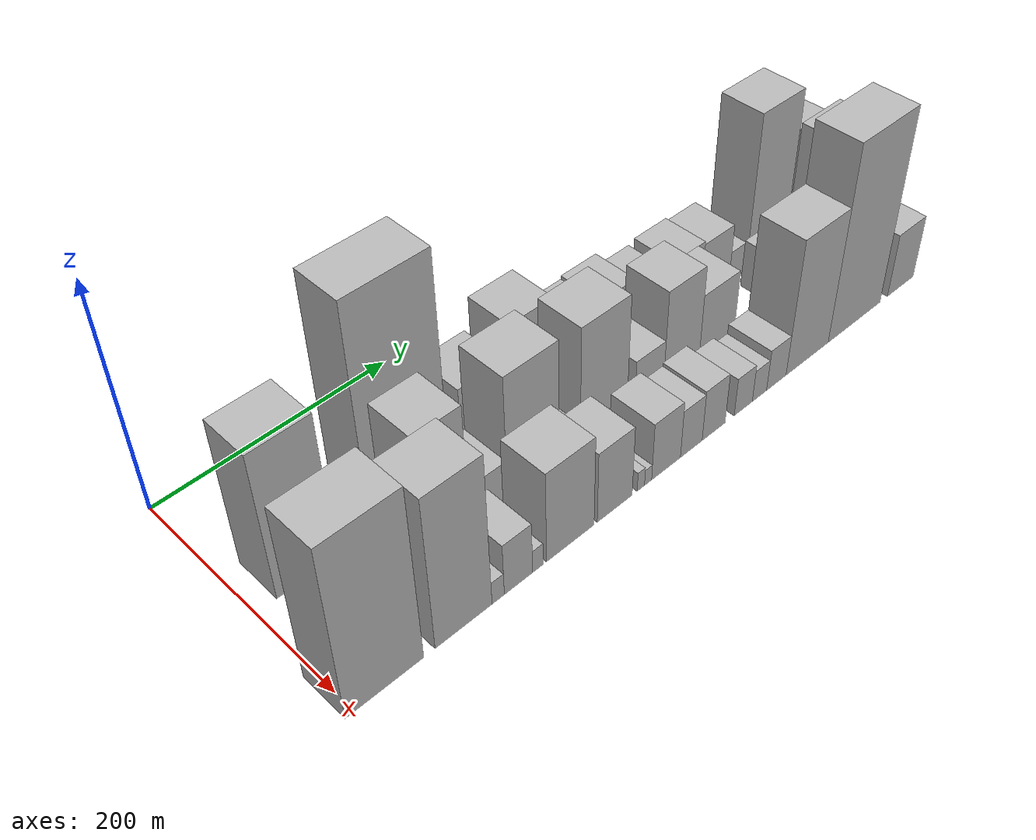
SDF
<sdf version="1.6">
 <world name="default">
  <model name="building_18">
   <static>1</static>
   <pose>100.0000 39.9462 0 0.000000 0.000000 0.000000</pose>
   <link name="link">
    <pose>0 0 66.00 0 0 0</pose>
    <collision name="collision"><geometry><box><size>40.0000 47.7976 132.0000</size></box></geometry></collision>
    <visual name="visual">
     <cast_shadows>0</cast_shadows>
     <geometry><box><size>40.0000 47.7976 132.0000</size></box></geometry>
     <material>
      <script>
       <uri>model://HANNAS_wall/materials/scripts</uri>
       <uri>model://HANNAS_wall/materials/textures</uri>
       <name>vrc/HANNAS_wall</name>
      </script>
     </material>
    </visual>
   </link>
  </model>
  <model name="building_19">
   <static>1</static>
   <pose>100.0000 73.2808 0 0.000000 0.000000 0.000000</pose>
   <link name="link">
    <pose>0 0 16.50 0 0 0</pose>
    <collision name="collision"><geometry><box><size>40.0000 18.8716 33.0000</size></box></geometry></collision>
    <visual name="visual">
     <cast_shadows>0</cast_shadows>
     <geometry><box><size>40.0000 18.8716 33.0000</size></box></geometry>
     <material>
      <script>
       <uri>model://HANNAS_wall/materials/scripts</uri>
       <uri>model://HANNAS_wall/materials/textures</uri>
       <name>vrc/HANNAS_wall</name>
      </script>
     </material>
    </visual>
   </link>
  </model>
  <model name="building_20">
   <static>1</static>
   <pose>100.0000 126.0601 0 0.000000 0.000000 0.000000</pose>
   <link name="link">
    <pose>0 0 100.50 0 0 0</pose>
    <collision name="collision"><geometry><box><size>40.0000 68.6869 201.0000</size></box></geometry></collision>
    <visual name="visual">
     <cast_shadows>0</cast_shadows>
     <geometry><box><size>40.0000 68.6869 201.0000</size></box></geometry>
     <material>
      <script>
       <uri>model://HANNAS_wall/materials/scripts</uri>
       <uri>model://HANNAS_wall/materials/textures</uri>
       <name>vrc/HANNAS_wall</name>
      </script>
     </material>
    </visual>
   </link>
  </model>
  <model name="building_21">
   <static>1</static>
   <pose>100.0000 166.3277 0 0.000000 0.000000 0.000000</pose>
   <link name="link">
    <pose>0 0 12.00 0 0 0</pose>
    <collision name="collision"><geometry><box><size>40.0000 11.8484 24.0000</size></box></geometry></collision>
    <visual name="visual">
     <cast_shadows>0</cast_shadows>
     <geometry><box><size>40.0000 11.8484 24.0000</size></box></geometry>
     <material>
      <script>
       <uri>model://HANNAS_wall/materials/scripts</uri>
       <uri>model://HANNAS_wall/materials/textures</uri>
       <name>vrc/HANNAS_wall</name>
      </script>
     </material>
    </visual>
   </link>
  </model>
  <model name="building_22">
   <static>1</static>
   <pose>100.0000 192.9330 0 0.000000 0.000000 0.000000</pose>
   <link name="link">
    <pose>0 0 37.50 0 0 0</pose>
    <collision name="collision"><geometry><box><size>40.0000 41.3621 75.0000</size></box></geometry></collision>
    <visual name="visual">
     <cast_shadows>0</cast_shadows>
     <geometry><box><size>40.0000 41.3621 75.0000</size></box></geometry>
     <material>
      <script>
       <uri>model://HANNAS_wall/materials/scripts</uri>
       <uri>model://HANNAS_wall/materials/textures</uri>
       <name>vrc/HANNAS_wall</name>
      </script>
     </material>
    </visual>
   </link>
  </model>
  <model name="building_23">
   <static>1</static>
   <pose>100.0000 238.8973 0 0.000000 0.000000 0.000000</pose>
   <link name="link">
    <pose>0 0 51.00 0 0 0</pose>
    <collision name="collision"><geometry><box><size>40.0000 40.5665 102.0000</size></box></geometry></collision>
    <visual name="visual">
     <cast_shadows>0</cast_shadows>
     <geometry><box><size>40.0000 40.5665 102.0000</size></box></geometry>
     <material>
      <script>
       <uri>model://HANNAS_wall/materials/scripts</uri>
       <uri>model://HANNAS_wall/materials/textures</uri>
       <name>vrc/HANNAS_wall</name>
      </script>
     </material>
    </visual>
   </link>
  </model>
  <model name="building_24">
   <static>1</static>
   <pose>100.0000 286.8793 0 0.000000 0.000000 0.000000</pose>
   <link name="link">
    <pose>0 0 33.00 0 0 0</pose>
    <collision name="collision"><geometry><box><size>40.0000 37.3974 66.0000</size></box></geometry></collision>
    <visual name="visual">
     <cast_shadows>0</cast_shadows>
     <geometry><box><size>40.0000 37.3974 66.0000</size></box></geometry>
     <material>
      <script>
       <uri>model://HANNAS_wall/materials/scripts</uri>
       <uri>model://HANNAS_wall/materials/textures</uri>
       <name>vrc/HANNAS_wall</name>
      </script>
     </material>
    </visual>
   </link>
  </model>
  <model name="building_25">
   <static>1</static>
   <pose>100.0000 323.3597 0 0.000000 0.000000 0.000000</pose>
   <link name="link">
    <pose>0 0 34.50 0 0 0</pose>
    <collision name="collision"><geometry><box><size>40.0000 35.5632 69.0000</size></box></geometry></collision>
    <visual name="visual">
     <cast_shadows>0</cast_shadows>
     <geometry><box><size>40.0000 35.5632 69.0000</size></box></geometry>
     <material>
      <script>
       <uri>model://HANNAS_wall/materials/scripts</uri>
       <uri>model://HANNAS_wall/materials/textures</uri>
       <name>vrc/HANNAS_wall</name>
      </script>
     </material>
    </visual>
   </link>
  </model>
  <model name="building_26">
   <static>1</static>
   <pose>100.0000 360.8102 0 0.000000 0.000000 0.000000</pose>
   <link name="link">
    <pose>0 0 28.50 0 0 0</pose>
    <collision name="collision"><geometry><box><size>40.0000 31.3379 57.0000</size></box></geometry></collision>
    <visual name="visual">
     <cast_shadows>0</cast_shadows>
     <geometry><box><size>40.0000 31.3379 57.0000</size></box></geometry>
     <material>
      <script>
       <uri>model://HANNAS_wall/materials/scripts</uri>
       <uri>model://HANNAS_wall/materials/textures</uri>
       <name>vrc/HANNAS_wall</name>
      </script>
     </material>
    </visual>
   </link>
  </model>
  <model name="building_27">
   <static>1</static>
   <pose>100.0000 400.1035 0 0.000000 0.000000 0.000000</pose>
   <link name="link">
    <pose>0 0 30.00 0 0 0</pose>
    <collision name="collision"><geometry><box><size>40.0000 35.2487 60.0000</size></box></geometry></collision>
    <visual name="visual">
     <cast_shadows>0</cast_shadows>
     <geometry><box><size>40.0000 35.2487 60.0000</size></box></geometry>
     <material>
      <script>
       <uri>model://HANNAS_wall/materials/scripts</uri>
       <uri>model://HANNAS_wall/materials/textures</uri>
       <name>vrc/HANNAS_wall</name>
      </script>
     </material>
    </visual>
   </link>
  </model>
  <model name="building_28">
   <static>1</static>
   <pose>100.0000 434.7161 0 0.000000 0.000000 0.000000</pose>
   <link name="link">
    <pose>0 0 28.50 0 0 0</pose>
    <collision name="collision"><geometry><box><size>40.0000 33.9765 57.0000</size></box></geometry></collision>
    <visual name="visual">
     <cast_shadows>0</cast_shadows>
     <geometry><box><size>40.0000 33.9765 57.0000</size></box></geometry>
     <material>
      <script>
       <uri>model://HANNAS_wall/materials/scripts</uri>
       <uri>model://HANNAS_wall/materials/textures</uri>
       <name>vrc/HANNAS_wall</name>
      </script>
     </material>
    </visual>
   </link>
  </model>
  <model name="building_29">
   <static>1</static>
   <pose>100.0000 460.5579 0 0.000000 0.000000 0.000000</pose>
   <link name="link">
    <pose>0 0 15.00 0 0 0</pose>
    <collision name="collision"><geometry><box><size>40.0000 17.7070 30.0000</size></box></geometry></collision>
    <visual name="visual">
     <cast_shadows>0</cast_shadows>
     <geometry><box><size>40.0000 17.7070 30.0000</size></box></geometry>
     <material>
      <script>
       <uri>model://HANNAS_wall/materials/scripts</uri>
       <uri>model://HANNAS_wall/materials/textures</uri>
       <name>vrc/HANNAS_wall</name>
      </script>
     </material>
    </visual>
   </link>
  </model>
  <model name="building_30">
   <static>1</static>
   <pose>100.0000 496.8309 0 0.000000 0.000000 0.000000</pose>
   <link name="link">
    <pose>0 0 73.50 0 0 0</pose>
    <collision name="collision"><geometry><box><size>40.0000 48.8391 147.0000</size></box></geometry></collision>
    <visual name="visual">
     <cast_shadows>0</cast_shadows>
     <geometry><box><size>40.0000 48.8391 147.0000</size></box></geometry>
     <material>
      <script>
       <uri>model://HANNAS_wall/materials/scripts</uri>
       <uri>model://HANNAS_wall/materials/textures</uri>
       <name>vrc/HANNAS_wall</name>
      </script>
     </material>
    </visual>
   </link>
  </model>
  <model name="building_31">
   <static>1</static>
   <pose>100.0000 542.0296 0 0.000000 0.000000 0.000000</pose>
   <link name="link">
    <pose>0 0 54.00 0 0 0</pose>
    <collision name="collision"><geometry><box><size>40.0000 35.5582 108.0000</size></box></geometry></collision>
    <visual name="visual">
     <cast_shadows>0</cast_shadows>
     <geometry><box><size>40.0000 35.5582 108.0000</size></box></geometry>
     <material>
      <script>
       <uri>model://HANNAS_wall/materials/scripts</uri>
       <uri>model://HANNAS_wall/materials/textures</uri>
       <name>vrc/HANNAS_wall</name>
      </script>
     </material>
    </visual>
   </link>
  </model>
  <model name="building_47">
   <static>1</static>
   <pose>149.0000 22.3086 0 0.000000 0.000000 0.000000</pose>
   <link name="link">
    <pose>0 0 12.00 0 0 0</pose>
    <collision name="collision"><geometry><box><size>40.0000 9.8661 24.0000</size></box></geometry></collision>
    <visual name="visual">
     <cast_shadows>0</cast_shadows>
     <geometry><box><size>40.0000 9.8661 24.0000</size></box></geometry>
     <material>
      <script>
       <uri>model://HANNAS_wall/materials/scripts</uri>
       <uri>model://HANNAS_wall/materials/textures</uri>
       <name>vrc/HANNAS_wall</name>
      </script>
     </material>
    </visual>
   </link>
  </model>
  <model name="building_48">
   <static>1</static>
   <pose>149.0000 48.2314 0 0.000000 0.000000 0.000000</pose>
   <link name="link">
    <pose>0 0 27.00 0 0 0</pose>
    <collision name="collision"><geometry><box><size>40.0000 29.9794 54.0000</size></box></geometry></collision>
    <visual name="visual">
     <cast_shadows>0</cast_shadows>
     <geometry><box><size>40.0000 29.9794 54.0000</size></box></geometry>
     <material>
      <script>
       <uri>model://HANNAS_wall/materials/scripts</uri>
       <uri>model://HANNAS_wall/materials/textures</uri>
       <name>vrc/HANNAS_wall</name>
      </script>
     </material>
    </visual>
   </link>
  </model>
  <model name="building_49">
   <static>1</static>
   <pose>149.0000 66.9365 0 0.000000 0.000000 0.000000</pose>
   <link name="link">
    <pose>0 0 9.00 0 0 0</pose>
    <collision name="collision"><geometry><box><size>40.0000 7.4309 18.0000</size></box></geometry></collision>
    <visual name="visual">
     <cast_shadows>0</cast_shadows>
     <geometry><box><size>40.0000 7.4309 18.0000</size></box></geometry>
     <material>
      <script>
       <uri>model://HANNAS_wall/materials/scripts</uri>
       <uri>model://HANNAS_wall/materials/textures</uri>
       <name>vrc/HANNAS_wall</name>
      </script>
     </material>
    </visual>
   </link>
  </model>
  <model name="building_50">
   <static>1</static>
   <pose>149.0000 83.5886 0 0.000000 0.000000 0.000000</pose>
   <link name="link">
    <pose>0 0 22.50 0 0 0</pose>
    <collision name="collision"><geometry><box><size>40.0000 25.8733 45.0000</size></box></geometry></collision>
    <visual name="visual">
     <cast_shadows>0</cast_shadows>
     <geometry><box><size>40.0000 25.8733 45.0000</size></box></geometry>
     <material>
      <script>
       <uri>model://HANNAS_wall/materials/scripts</uri>
       <uri>model://HANNAS_wall/materials/textures</uri>
       <name>vrc/HANNAS_wall</name>
      </script>
     </material>
    </visual>
   </link>
  </model>
  <model name="building_51">
   <static>1</static>
   <pose>149.0000 115.8241 0 0.000000 0.000000 0.000000</pose>
   <link name="link">
    <pose>0 0 61.50 0 0 0</pose>
    <collision name="collision"><geometry><box><size>40.0000 38.5976 123.0000</size></box></geometry></collision>
    <visual name="visual">
     <cast_shadows>0</cast_shadows>
     <geometry><box><size>40.0000 38.5976 123.0000</size></box></geometry>
     <material>
      <script>
       <uri>model://HANNAS_wall/materials/scripts</uri>
       <uri>model://HANNAS_wall/materials/textures</uri>
       <name>vrc/HANNAS_wall</name>
      </script>
     </material>
    </visual>
   </link>
  </model>
  <model name="building_52">
   <static>1</static>
   <pose>149.0000 156.2831 0 0.000000 0.000000 0.000000</pose>
   <link name="link">
    <pose>0 0 24.00 0 0 0</pose>
    <collision name="collision"><geometry><box><size>40.0000 24.3204 48.0000</size></box></geometry></collision>
    <visual name="visual">
     <cast_shadows>0</cast_shadows>
     <geometry><box><size>40.0000 24.3204 48.0000</size></box></geometry>
     <material>
      <script>
       <uri>model://HANNAS_wall/materials/scripts</uri>
       <uri>model://HANNAS_wall/materials/textures</uri>
       <name>vrc/HANNAS_wall</name>
      </script>
     </material>
    </visual>
   </link>
  </model>
  <model name="building_53">
   <static>1</static>
   <pose>149.0000 192.3120 0 0.000000 0.000000 0.000000</pose>
   <link name="link">
    <pose>0 0 61.50 0 0 0</pose>
    <collision name="collision"><geometry><box><size>40.0000 47.7375 123.0000</size></box></geometry></collision>
    <visual name="visual">
     <cast_shadows>0</cast_shadows>
     <geometry><box><size>40.0000 47.7375 123.0000</size></box></geometry>
     <material>
      <script>
       <uri>model://HANNAS_wall/materials/scripts</uri>
       <uri>model://HANNAS_wall/materials/textures</uri>
       <name>vrc/HANNAS_wall</name>
      </script>
     </material>
    </visual>
   </link>
  </model>
  <model name="building_54">
   <static>1</static>
   <pose>149.0000 227.7217 0 0.000000 0.000000 0.000000</pose>
   <link name="link">
    <pose>0 0 16.50 0 0 0</pose>
    <collision name="collision"><geometry><box><size>40.0000 17.0818 33.0000</size></box></geometry></collision>
    <visual name="visual">
     <cast_shadows>0</cast_shadows>
     <geometry><box><size>40.0000 17.0818 33.0000</size></box></geometry>
     <material>
      <script>
       <uri>model://HANNAS_wall/materials/scripts</uri>
       <uri>model://HANNAS_wall/materials/textures</uri>
       <name>vrc/HANNAS_wall</name>
      </script>
     </material>
    </visual>
   </link>
  </model>
  <model name="building_55">
   <static>1</static>
   <pose>149.0000 259.4241 0 0.000000 0.000000 0.000000</pose>
   <link name="link">
    <pose>0 0 60.00 0 0 0</pose>
    <collision name="collision"><geometry><box><size>40.0000 46.3230 120.0000</size></box></geometry></collision>
    <visual name="visual">
     <cast_shadows>0</cast_shadows>
     <geometry><box><size>40.0000 46.3230 120.0000</size></box></geometry>
     <material>
      <script>
       <uri>model://HANNAS_wall/materials/scripts</uri>
       <uri>model://HANNAS_wall/materials/textures</uri>
       <name>vrc/HANNAS_wall</name>
      </script>
     </material>
    </visual>
   </link>
  </model>
  <model name="building_56">
   <static>1</static>
   <pose>149.0000 305.5811 0 0.000000 0.000000 0.000000</pose>
   <link name="link">
    <pose>0 0 27.00 0 0 0</pose>
    <collision name="collision"><geometry><box><size>40.0000 29.9910 54.0000</size></box></geometry></collision>
    <visual name="visual">
     <cast_shadows>0</cast_shadows>
     <geometry><box><size>40.0000 29.9910 54.0000</size></box></geometry>
     <material>
      <script>
       <uri>model://HANNAS_wall/materials/scripts</uri>
       <uri>model://HANNAS_wall/materials/textures</uri>
       <name>vrc/HANNAS_wall</name>
      </script>
     </material>
    </visual>
   </link>
  </model>
  <model name="building_57">
   <static>1</static>
   <pose>149.0000 339.8519 0 0.000000 0.000000 0.000000</pose>
   <link name="link">
    <pose>0 0 49.50 0 0 0</pose>
    <collision name="collision"><geometry><box><size>40.0000 38.5507 99.0000</size></box></geometry></collision>
    <visual name="visual">
     <cast_shadows>0</cast_shadows>
     <geometry><box><size>40.0000 38.5507 99.0000</size></box></geometry>
     <material>
      <script>
       <uri>model://HANNAS_wall/materials/scripts</uri>
       <uri>model://HANNAS_wall/materials/textures</uri>
       <name>vrc/HANNAS_wall</name>
      </script>
     </material>
    </visual>
   </link>
  </model>
  <model name="building_58">
   <static>1</static>
   <pose>149.0000 378.7646 0 0.000000 0.000000 0.000000</pose>
   <link name="link">
    <pose>0 0 36.00 0 0 0</pose>
    <collision name="collision"><geometry><box><size>40.0000 39.2746 72.0000</size></box></geometry></collision>
    <visual name="visual">
     <cast_shadows>0</cast_shadows>
     <geometry><box><size>40.0000 39.2746 72.0000</size></box></geometry>
     <material>
      <script>
       <uri>model://HANNAS_wall/materials/scripts</uri>
       <uri>model://HANNAS_wall/materials/textures</uri>
       <name>vrc/HANNAS_wall</name>
      </script>
     </material>
    </visual>
   </link>
  </model>
  <model name="building_59">
   <static>1</static>
   <pose>149.0000 467.0458 0 0.000000 0.000000 0.000000</pose>
   <link name="link">
    <pose>0 0 22.50 0 0 0</pose>
    <collision name="collision"><geometry><box><size>40.0000 23.7626 45.0000</size></box></geometry></collision>
    <visual name="visual">
     <cast_shadows>0</cast_shadows>
     <geometry><box><size>40.0000 23.7626 45.0000</size></box></geometry>
     <material>
      <script>
       <uri>model://HANNAS_wall/materials/scripts</uri>
       <uri>model://HANNAS_wall/materials/textures</uri>
       <name>vrc/HANNAS_wall</name>
      </script>
     </material>
    </visual>
   </link>
  </model>
  <model name="building_60">
   <static>1</static>
   <pose>149.0000 491.8286 0 0.000000 0.000000 0.000000</pose>
   <link name="link">
    <pose>0 0 25.50 0 0 0</pose>
    <collision name="collision"><geometry><box><size>40.0000 25.8031 51.0000</size></box></geometry></collision>
    <visual name="visual">
     <cast_shadows>0</cast_shadows>
     <geometry><box><size>40.0000 25.8031 51.0000</size></box></geometry>
     <material>
      <script>
       <uri>model://HANNAS_wall/materials/scripts</uri>
       <uri>model://HANNAS_wall/materials/textures</uri>
       <name>vrc/HANNAS_wall</name>
      </script>
     </material>
    </visual>
   </link>
  </model>
  <model name="building_61">
   <static>1</static>
   <pose>149.0000 532.7078 0 0.000000 0.000000 0.000000</pose>
   <link name="link">
    <pose>0 0 63.00 0 0 0</pose>
    <collision name="collision"><geometry><box><size>40.0000 45.9553 126.0000</size></box></geometry></collision>
    <visual name="visual">
     <cast_shadows>0</cast_shadows>
     <geometry><box><size>40.0000 45.9553 126.0000</size></box></geometry>
     <material>
      <script>
       <uri>model://HANNAS_wall/materials/scripts</uri>
       <uri>model://HANNAS_wall/materials/textures</uri>
       <name>vrc/HANNAS_wall</name>
      </script>
     </material>
    </visual>
   </link>
  </model>
  <model name="building_76">
   <static>1</static>
   <pose>198.0000 23.2426 0 0.000000 0.000000 0.000000</pose>
   <link name="link">
    <pose>0 0 78.00 0 0 0</pose>
    <collision name="collision"><geometry><box><size>40.0000 60.0287 156.0000</size></box></geometry></collision>
    <visual name="visual">
     <cast_shadows>0</cast_shadows>
     <geometry><box><size>40.0000 60.0287 156.0000</size></box></geometry>
     <material>
      <script>
       <uri>model://HANNAS_wall/materials/scripts</uri>
       <uri>model://HANNAS_wall/materials/textures</uri>
       <name>vrc/HANNAS_wall</name>
      </script>
     </material>
    </visual>
   </link>
  </model>
  <model name="building_77">
   <static>1</static>
   <pose>198.0000 85.6643 0 0.000000 0.000000 0.000000</pose>
   <link name="link">
    <pose>0 0 69.00 0 0 0</pose>
    <collision name="collision"><geometry><box><size>40.0000 46.8146 138.0000</size></box></geometry></collision>
    <visual name="visual">
     <cast_shadows>0</cast_shadows>
     <geometry><box><size>40.0000 46.8146 138.0000</size></box></geometry>
     <material>
      <script>
       <uri>model://HANNAS_wall/materials/scripts</uri>
       <uri>model://HANNAS_wall/materials/textures</uri>
       <name>vrc/HANNAS_wall</name>
      </script>
     </material>
    </visual>
   </link>
  </model>
  <model name="building_78">
   <static>1</static>
   <pose>198.0000 114.3042 0 0.000000 0.000000 0.000000</pose>
   <link name="link">
    <pose>0 0 10.50 0 0 0</pose>
    <collision name="collision"><geometry><box><size>40.0000 10.4653 21.0000</size></box></geometry></collision>
    <visual name="visual">
     <cast_shadows>0</cast_shadows>
     <geometry><box><size>40.0000 10.4653 21.0000</size></box></geometry>
     <material>
      <script>
       <uri>model://HANNAS_wall/materials/scripts</uri>
       <uri>model://HANNAS_wall/materials/textures</uri>
       <name>vrc/HANNAS_wall</name>
      </script>
     </material>
    </visual>
   </link>
  </model>
  <model name="building_79">
   <static>1</static>
   <pose>198.0000 131.8336 0 0.000000 0.000000 0.000000</pose>
   <link name="link">
    <pose>0 0 24.00 0 0 0</pose>
    <collision name="collision"><geometry><box><size>40.0000 24.5935 48.0000</size></box></geometry></collision>
    <visual name="visual">
     <cast_shadows>0</cast_shadows>
     <geometry><box><size>40.0000 24.5935 48.0000</size></box></geometry>
     <material>
      <script>
       <uri>model://HANNAS_wall/materials/scripts</uri>
       <uri>model://HANNAS_wall/materials/textures</uri>
       <name>vrc/HANNAS_wall</name>
      </script>
     </material>
    </visual>
   </link>
  </model>
  <model name="building_80">
   <static>1</static>
   <pose>198.0000 148.7965 0 0.000000 0.000000 0.000000</pose>
   <link name="link">
    <pose>0 0 10.50 0 0 0</pose>
    <collision name="collision"><geometry><box><size>40.0000 9.3325 21.0000</size></box></geometry></collision>
    <visual name="visual">
     <cast_shadows>0</cast_shadows>
     <geometry><box><size>40.0000 9.3325 21.0000</size></box></geometry>
     <material>
      <script>
       <uri>model://HANNAS_wall/materials/scripts</uri>
       <uri>model://HANNAS_wall/materials/textures</uri>
       <name>vrc/HANNAS_wall</name>
      </script>
     </material>
    </visual>
   </link>
  </model>
  <model name="building_81">
   <static>1</static>
   <pose>198.0000 178.2191 0 0.000000 0.000000 0.000000</pose>
   <link name="link">
    <pose>0 0 42.00 0 0 0</pose>
    <collision name="collision"><geometry><box><size>40.0000 43.5127 84.0000</size></box></geometry></collision>
    <visual name="visual">
     <cast_shadows>0</cast_shadows>
     <geometry><box><size>40.0000 43.5127 84.0000</size></box></geometry>
     <material>
      <script>
       <uri>model://HANNAS_wall/materials/scripts</uri>
       <uri>model://HANNAS_wall/materials/textures</uri>
       <name>vrc/HANNAS_wall</name>
      </script>
     </material>
    </visual>
   </link>
  </model>
  <model name="building_82">
   <static>1</static>
   <pose>198.0000 219.7329 0 0.000000 0.000000 0.000000</pose>
   <link name="link">
    <pose>0 0 33.00 0 0 0</pose>
    <collision name="collision"><geometry><box><size>40.0000 33.5148 66.0000</size></box></geometry></collision>
    <visual name="visual">
     <cast_shadows>0</cast_shadows>
     <geometry><box><size>40.0000 33.5148 66.0000</size></box></geometry>
     <material>
      <script>
       <uri>model://HANNAS_wall/materials/scripts</uri>
       <uri>model://HANNAS_wall/materials/textures</uri>
       <name>vrc/HANNAS_wall</name>
      </script>
     </material>
    </visual>
   </link>
  </model>
  <model name="building_83">
   <static>1</static>
   <pose>198.0000 245.0904 0 0.000000 0.000000 0.000000</pose>
   <link name="link">
    <pose>0 0 9.00 0 0 0</pose>
    <collision name="collision"><geometry><box><size>40.0000 7.2001 18.0000</size></box></geometry></collision>
    <visual name="visual">
     <cast_shadows>0</cast_shadows>
     <geometry><box><size>40.0000 7.2001 18.0000</size></box></geometry>
     <material>
      <script>
       <uri>model://HANNAS_wall/materials/scripts</uri>
       <uri>model://HANNAS_wall/materials/textures</uri>
       <name>vrc/HANNAS_wall</name>
      </script>
     </material>
    </visual>
   </link>
  </model>
  <model name="building_84">
   <static>1</static>
   <pose>198.0000 252.2276 0 0.000000 0.000000 0.000000</pose>
   <link name="link">
    <pose>0 0 7.50 0 0 0</pose>
    <collision name="collision"><geometry><box><size>40.0000 7.0743 15.0000</size></box></geometry></collision>
    <visual name="visual">
     <cast_shadows>0</cast_shadows>
     <geometry><box><size>40.0000 7.0743 15.0000</size></box></geometry>
     <material>
      <script>
       <uri>model://HANNAS_wall/materials/scripts</uri>
       <uri>model://HANNAS_wall/materials/textures</uri>
       <name>vrc/HANNAS_wall</name>
      </script>
     </material>
    </visual>
   </link>
  </model>
  <model name="building_85">
   <static>1</static>
   <pose>198.0000 270.3733 0 0.000000 0.000000 0.000000</pose>
   <link name="link">
    <pose>0 0 27.00 0 0 0</pose>
    <collision name="collision"><geometry><box><size>40.0000 29.2171 54.0000</size></box></geometry></collision>
    <visual name="visual">
     <cast_shadows>0</cast_shadows>
     <geometry><box><size>40.0000 29.2171 54.0000</size></box></geometry>
     <material>
      <script>
       <uri>model://HANNAS_wall/materials/scripts</uri>
       <uri>model://HANNAS_wall/materials/textures</uri>
       <name>vrc/HANNAS_wall</name>
      </script>
     </material>
    </visual>
   </link>
  </model>
  <model name="building_86">
   <static>1</static>
   <pose>198.0000 296.3328 0 0.000000 0.000000 0.000000</pose>
   <link name="link">
    <pose>0 0 22.50 0 0 0</pose>
    <collision name="collision"><geometry><box><size>40.0000 22.7019 45.0000</size></box></geometry></collision>
    <visual name="visual">
     <cast_shadows>0</cast_shadows>
     <geometry><box><size>40.0000 22.7019 45.0000</size></box></geometry>
     <material>
      <script>
       <uri>model://HANNAS_wall/materials/scripts</uri>
       <uri>model://HANNAS_wall/materials/textures</uri>
       <name>vrc/HANNAS_wall</name>
      </script>
     </material>
    </visual>
   </link>
  </model>
  <model name="building_87">
   <static>1</static>
   <pose>198.0000 319.9669 0 0.000000 0.000000 0.000000</pose>
   <link name="link">
    <pose>0 0 24.00 0 0 0</pose>
    <collision name="collision"><geometry><box><size>40.0000 24.5662 48.0000</size></box></geometry></collision>
    <visual name="visual">
     <cast_shadows>0</cast_shadows>
     <geometry><box><size>40.0000 24.5662 48.0000</size></box></geometry>
     <material>
      <script>
       <uri>model://HANNAS_wall/materials/scripts</uri>
       <uri>model://HANNAS_wall/materials/textures</uri>
       <name>vrc/HANNAS_wall</name>
      </script>
     </material>
    </visual>
   </link>
  </model>
  <model name="building_88">
   <static>1</static>
   <pose>198.0000 352.2411 0 0.000000 0.000000 0.000000</pose>
   <link name="link">
    <pose>0 0 18.00 0 0 0</pose>
    <collision name="collision"><geometry><box><size>40.0000 19.9821 36.0000</size></box></geometry></collision>
    <visual name="visual">
     <cast_shadows>0</cast_shadows>
     <geometry><box><size>40.0000 19.9821 36.0000</size></box></geometry>
     <material>
      <script>
       <uri>model://HANNAS_wall/materials/scripts</uri>
       <uri>model://HANNAS_wall/materials/textures</uri>
       <name>vrc/HANNAS_wall</name>
      </script>
     </material>
    </visual>
   </link>
  </model>
  <model name="building_89">
   <static>1</static>
   <pose>198.0000 370.2662 0 0.000000 0.000000 0.000000</pose>
   <link name="link">
    <pose>0 0 15.00 0 0 0</pose>
    <collision name="collision"><geometry><box><size>40.0000 16.0682 30.0000</size></box></geometry></collision>
    <visual name="visual">
     <cast_shadows>0</cast_shadows>
     <geometry><box><size>40.0000 16.0682 30.0000</size></box></geometry>
     <material>
      <script>
       <uri>model://HANNAS_wall/materials/scripts</uri>
       <uri>model://HANNAS_wall/materials/textures</uri>
       <name>vrc/HANNAS_wall</name>
      </script>
     </material>
    </visual>
   </link>
  </model>
  <model name="building_90">
   <static>1</static>
   <pose>198.0000 389.5272 0 0.000000 0.000000 0.000000</pose>
   <link name="link">
    <pose>0 0 19.50 0 0 0</pose>
    <collision name="collision"><geometry><box><size>40.0000 22.4536 39.0000</size></box></geometry></collision>
    <visual name="visual">
     <cast_shadows>0</cast_shadows>
     <geometry><box><size>40.0000 22.4536 39.0000</size></box></geometry>
     <material>
      <script>
       <uri>model://HANNAS_wall/materials/scripts</uri>
       <uri>model://HANNAS_wall/materials/textures</uri>
       <name>vrc/HANNAS_wall</name>
      </script>
     </material>
    </visual>
   </link>
  </model>
  <model name="building_91">
   <static>1</static>
   <pose>198.0000 425.9356 0 0.000000 0.000000 0.000000</pose>
   <link name="link">
    <pose>0 0 63.00 0 0 0</pose>
    <collision name="collision"><geometry><box><size>40.0000 50.3632 126.0000</size></box></geometry></collision>
    <visual name="visual">
     <cast_shadows>0</cast_shadows>
     <geometry><box><size>40.0000 50.3632 126.0000</size></box></geometry>
     <material>
      <script>
       <uri>model://HANNAS_wall/materials/scripts</uri>
       <uri>model://HANNAS_wall/materials/textures</uri>
       <name>vrc/HANNAS_wall</name>
      </script>
     </material>
    </visual>
   </link>
  </model>
  <model name="building_92">
   <static>1</static>
   <pose>198.0000 483.8103 0 0.000000 0.000000 0.000000</pose>
   <link name="link">
    <pose>0 0 90.00 0 0 0</pose>
    <collision name="collision"><geometry><box><size>40.0000 65.3863 180.0000</size></box></geometry></collision>
    <visual name="visual">
     <cast_shadows>0</cast_shadows>
     <geometry><box><size>40.0000 65.3863 180.0000</size></box></geometry>
     <material>
      <script>
       <uri>model://HANNAS_wall/materials/scripts</uri>
       <uri>model://HANNAS_wall/materials/textures</uri>
       <name>vrc/HANNAS_wall</name>
      </script>
     </material>
    </visual>
   </link>
  </model>
  <model name="building_93">
   <static>1</static>
   <pose>198.0000 543.5589 0 0.000000 0.000000 0.000000</pose>
   <link name="link">
    <pose>0 0 30.00 0 0 0</pose>
    <collision name="collision"><geometry><box><size>40.0000 34.1108 60.0000</size></box></geometry></collision>
    <visual name="visual">
     <cast_shadows>0</cast_shadows>
     <geometry><box><size>40.0000 34.1108 60.0000</size></box></geometry>
     <material>
      <script>
       <uri>model://HANNAS_wall/materials/scripts</uri>
       <uri>model://HANNAS_wall/materials/textures</uri>
       <name>vrc/HANNAS_wall</name>
      </script>
     </material>
    </visual>
   </link>
  </model>
 </world>
</sdf>
